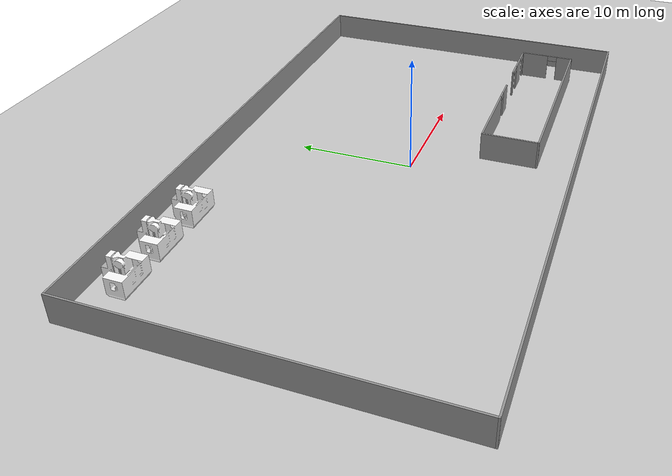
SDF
<sdf version="1.7">
 <world name="default">
  <light name="sun" type="directional">
   <pose>0 0 10 0 -0 0</pose>
   <diffuse>0.8 0.8 0.8 1</diffuse>
   <specular>0.2 0.2 0.2 1</specular>
   <attenuation>
    <range>1000</range>
    <constant>0.9</constant>
    <linear>0.01</linear>
    <quadratic>0.001</quadratic>
   </attenuation>
   <direction>-0.5 0.1 -0.9</direction>
   <spot><inner_angle>0</inner_angle><outer_angle>0</outer_angle><falloff>0</falloff></spot>
  </light>
  <model name="ground_plane">
   <static>1</static>
   <link name="link">
    <collision name="collision">
     <geometry><plane><normal>0 0 1</normal><size>100 100</size></plane></geometry>
     <surface>
      <contact><collide_bitmask>65535</collide_bitmask></contact>
      <friction><ode><mu>100</mu><mu2>50</mu2></ode></friction>
     </surface>
    </collision>
    <visual name="visual">
     <cast_shadows>0</cast_shadows>
     <geometry><plane><normal>0 0 1</normal><size>100 100</size></plane></geometry>
     <material>
      <script><uri>file://media/materials/scripts/gazebo.material</uri><name>Gazebo/Grey</name></script>
     </material>
    </visual>
   </link>
  </model>
  <gravity>0 0 -9.8</gravity>
  <magnetic_field>6e-06 2.3e-05 -4.2e-05</magnetic_field>
  <atmosphere type="adiabatic"/>
  <physics type="ode">
   <max_step_size>0.001</max_step_size>
   <real_time_factor>1</real_time_factor>
   <real_time_update_rate>1000</real_time_update_rate>
  </physics>
  <scene><ambient>0.4 0.4 0.4 1</ambient><background>0.7 0.7 0.7 1</background><shadows>1</shadows></scene>
  <spherical_coordinates>
   <surface_model>EARTH_WGS84</surface_model>
   <latitude_deg>0</latitude_deg>
   <longitude_deg>0</longitude_deg>
   <elevation>0</elevation>
   <heading_deg>0</heading_deg>
  </spherical_coordinates>
  <model name="factoryWall">
   <pose>-0.946757 1.42435 0 0 -0 0</pose>
   <link name="Wall_0">
    <collision name="Wall_0_Collision">
     <geometry><box><size>30.15 0.15 2.5</size></box></geometry>
     <pose>0 0 1.25 0 -0 0</pose>
    </collision>
    <visual name="Wall_0_Visual">
     <pose>0 0 1.25 0 -0 0</pose>
     <geometry><box><size>30.15 0.15 2.5</size></box></geometry>
     <material>
      <script><uri>file://media/materials/scripts/gazebo.material</uri><name>Gazebo/Grey</name></script>
      <ambient>1 1 1 1</ambient>
     </material>
     <meta><layer>0</layer></meta>
    </visual>
    <pose>25 0 0 0 -0 1.5708</pose>
   </link>
   <link name="Wall_2">
    <collision name="Wall_2_Collision">
     <geometry><box><size>30.15 0.15 2.5</size></box></geometry>
     <pose>0 0 1.25 0 -0 0</pose>
    </collision>
    <visual name="Wall_2_Visual">
     <pose>0 0 1.25 0 -0 0</pose>
     <geometry><box><size>30.15 0.15 2.5</size></box></geometry>
     <material>
      <script><uri>file://media/materials/scripts/gazebo.material</uri><name>Gazebo/Grey</name></script>
      <ambient>1 1 1 1</ambient>
     </material>
     <meta><layer>0</layer></meta>
    </visual>
    <pose>-25 0 0 0 -0 1.5708</pose>
   </link>
   <link name="Wall_4">
    <collision name="Wall_4_Collision">
     <geometry><box><size>50.15 0.15 2.5</size></box></geometry>
     <pose>0 0 1.25 0 -0 0</pose>
    </collision>
    <visual name="Wall_4_Visual">
     <pose>0 0 1.25 0 -0 0</pose>
     <geometry><box><size>50.15 0.15 2.5</size></box></geometry>
     <material>
      <script><uri>file://media/materials/scripts/gazebo.material</uri><name>Gazebo/Grey</name></script>
      <ambient>1 1 1 1</ambient>
     </material>
     <meta><layer>0</layer></meta>
    </visual>
    <pose>0 15 0 0 -0 0</pose>
   </link>
   <link name="Wall_6">
    <collision name="Wall_6_Collision">
     <geometry><box><size>50.15 0.15 2.5</size></box></geometry>
     <pose>0 0 1.25 0 -0 0</pose>
    </collision>
    <visual name="Wall_6_Visual">
     <pose>0 0 1.25 0 -0 0</pose>
     <geometry><box><size>50.15 0.15 2.5</size></box></geometry>
     <material>
      <script><uri>file://media/materials/scripts/gazebo.material</uri><name>Gazebo/Grey</name></script>
      <ambient>1 1 1 1</ambient>
     </material>
     <meta><layer>0</layer></meta>
    </visual>
    <pose>0 -15 0 0 -0 0</pose>
   </link>
   <static>1</static>
  </model>
  <model name="demoPlaceWallv3">
   <pose>12.1937 -7.7684 0 0 -0 0</pose>
   <link name="Wall_0">
    <collision name="Wall_0_Collision">
     <geometry><box><size>17.75 0.15 2.5</size></box></geometry>
     <pose>0 0 1.25 0 -0 0</pose>
    </collision>
    <visual name="Wall_0_Visual">
     <pose>0 0 1.25 0 -0 0</pose>
     <geometry><box><size>17.75 0.15 2.5</size></box></geometry>
     <material>
      <script><uri>file://media/materials/scripts/gazebo.material</uri><name>Gazebo/Grey</name></script>
      <ambient>1 1 1 1</ambient>
     </material>
     <meta><layer>0</layer></meta>
    </visual>
    <pose>0 -2.447 0 0 -0 0</pose>
   </link>
   <link name="Wall_2">
    <collision name="Wall_2_Collision">
     <geometry><box><size>5.044 0.15 2.5</size></box></geometry>
     <pose>0 0 1.25 0 -0 0</pose>
    </collision>
    <visual name="Wall_2_Visual">
     <pose>0 0 1.25 0 -0 0</pose>
     <geometry><box><size>5.044 0.15 2.5</size></box></geometry>
     <material>
      <script><uri>file://media/materials/scripts/gazebo.material</uri><name>Gazebo/Grey</name></script>
      <ambient>1 1 1 1</ambient>
     </material>
     <meta><layer>0</layer></meta>
    </visual>
    <pose>-8.8 0 0 0 -0 1.5708</pose>
   </link>
   <link name="Wall_4">
    <pose>0 2.447 0 0 -0 0</pose>
    <visual name="Wall_4_Visual_0">
     <pose>-5.222 0 1.25 0 -0 0</pose>
     <geometry><box><size>7.306 0.15 2.5</size></box></geometry>
     <material>
      <script><uri>file://media/materials/scripts/gazebo.material</uri><name>Gazebo/Grey</name></script>
      <ambient>1 1 1 1</ambient>
     </material>
     <meta><layer>0</layer></meta>
    </visual>
    <collision name="Wall_4_Collision_0">
     <geometry><box><size>7.306 0.15 2.5</size></box></geometry>
     <pose>-5.222 0 1.25 0 -0 0</pose>
    </collision>
    <visual name="Wall_4_Visual_1">
     <pose>0.136 0 1.25 0 -0 0</pose>
     <geometry><box><size>1.61 0.15 2.5</size></box></geometry>
     <material>
      <script><uri>file://media/materials/scripts/gazebo.material</uri><name>Gazebo/Grey</name></script>
      <ambient>1 1 1 1</ambient>
     </material>
     <meta><layer>0</layer></meta>
    </visual>
    <collision name="Wall_4_Collision_1">
     <geometry><box><size>1.61 0.15 2.5</size></box></geometry>
     <pose>0.136 0 1.25 0 -0 0</pose>
    </collision>
    <visual name="Wall_4_Visual_2">
     <pose>3.886 0 1.25 0 -0 0</pose>
     <geometry><box><size>0.289999 0.15 2.5</size></box></geometry>
     <material>
      <script><uri>file://media/materials/scripts/gazebo.material</uri><name>Gazebo/Grey</name></script>
      <ambient>1 1 1 1</ambient>
     </material>
     <meta><layer>0</layer></meta>
    </visual>
    <collision name="Wall_4_Collision_2">
     <geometry><box><size>0.289999 0.15 2.5</size></box></geometry>
     <pose>3.886 0 1.25 0 -0 0</pose>
    </collision>
    <visual name="Wall_4_Visual_3">
     <pose>6.281 0 1.25 0 -0 0</pose>
     <geometry><box><size>1.9 0.15 2.5</size></box></geometry>
     <material>
      <script><uri>file://media/materials/scripts/gazebo.material</uri><name>Gazebo/Grey</name></script>
      <ambient>1 1 1 1</ambient>
     </material>
     <meta><layer>0</layer></meta>
    </visual>
    <collision name="Wall_4_Collision_3">
     <geometry><box><size>1.9 0.15 2.5</size></box></geometry>
     <pose>6.281 0 1.25 0 -0 0</pose>
    </collision>
    <visual name="Wall_4_Visual_4">
     <pose>8.703 0 1.25 0 -0 0</pose>
     <geometry><box><size>0.343999 0.15 2.5</size></box></geometry>
     <material>
      <script><uri>file://media/materials/scripts/gazebo.material</uri><name>Gazebo/Grey</name></script>
      <ambient>1 1 1 1</ambient>
     </material>
     <meta><layer>0</layer></meta>
    </visual>
    <collision name="Wall_4_Collision_4">
     <geometry><box><size>0.343999 0.15 2.5</size></box></geometry>
     <pose>8.703 0 1.25 0 -0 0</pose>
    </collision>
    <visual name="Wall_4_Visual_5">
     <pose>-1.119 0 2.25 0 -0 0</pose>
     <geometry><box><size>0.9 0.15 0.5</size></box></geometry>
     <material>
      <script><uri>file://media/materials/scripts/gazebo.material</uri><name>Gazebo/Grey</name></script>
      <ambient>1 1 1 1</ambient>
     </material>
     <meta><layer>0</layer></meta>
    </visual>
    <collision name="Wall_4_Collision_5">
     <geometry><box><size>0.9 0.15 0.5</size></box></geometry>
     <pose>-1.119 0 2.25 0 -0 0</pose>
    </collision>
    <visual name="Wall_4_Visual_6">
     <pose>4.681 0 2.25 0 -0 0</pose>
     <geometry><box><size>1.3 0.15 0.5</size></box></geometry>
     <material>
      <script><uri>file://media/materials/scripts/gazebo.material</uri><name>Gazebo/Grey</name></script>
      <ambient>1 1 1 1</ambient>
     </material>
     <meta><layer>0</layer></meta>
    </visual>
    <collision name="Wall_4_Collision_6">
     <geometry><box><size>1.3 0.15 0.5</size></box></geometry>
     <pose>4.681 0 2.25 0 -0 0</pose>
    </collision>
    <visual name="Wall_4_Visual_7">
     <pose>7.881 0 2.25 0 -0 0</pose>
     <geometry><box><size>1.3 0.15 0.5</size></box></geometry>
     <material>
      <script><uri>file://media/materials/scripts/gazebo.material</uri><name>Gazebo/Grey</name></script>
      <ambient>1 1 1 1</ambient>
     </material>
     <meta><layer>0</layer></meta>
    </visual>
    <collision name="Wall_4_Collision_7">
     <geometry><box><size>1.3 0.15 0.5</size></box></geometry>
     <pose>7.881 0 2.25 0 -0 0</pose>
    </collision>
   </link>
   <link name="Wall_6">
    <pose>8.8 0 0 0 -0 -1.5708</pose>
    <visual name="Wall_6_Visual_0">
     <pose>-1.2095 0 1.25 0 -0 0</pose>
     <geometry><box><size>2.625 0.15 2.5</size></box></geometry>
     <material>
      <script><uri>file://media/materials/scripts/gazebo.material</uri><name>Gazebo/Grey</name></script>
      <ambient>1 1 1 1</ambient>
     </material>
     <meta><layer>0</layer></meta>
    </visual>
    <collision name="Wall_6_Collision_0">
     <geometry><box><size>2.625 0.15 2.5</size></box></geometry>
     <pose>-1.2095 0 1.25 0 -0 0</pose>
    </collision>
    <visual name="Wall_6_Visual_1">
     <pose>1.7625 0 1.25 0 -0 0</pose>
     <geometry><box><size>1.519 0.15 2.5</size></box></geometry>
     <material>
      <script><uri>file://media/materials/scripts/gazebo.material</uri><name>Gazebo/Grey</name></script>
      <ambient>1 1 1 1</ambient>
     </material>
     <meta><layer>0</layer></meta>
    </visual>
    <collision name="Wall_6_Collision_1">
     <geometry><box><size>1.519 0.15 2.5</size></box></geometry>
     <pose>1.7625 0 1.25 0 -0 0</pose>
    </collision>
    <visual name="Wall_6_Visual_2">
     <pose>0.553 0 2.25 0 -0 0</pose>
     <geometry><box><size>0.9 0.15 0.5</size></box></geometry>
     <material>
      <script><uri>file://media/materials/scripts/gazebo.material</uri><name>Gazebo/Grey</name></script>
      <ambient>1 1 1 1</ambient>
     </material>
     <meta><layer>0</layer></meta>
    </visual>
    <collision name="Wall_6_Collision_2">
     <geometry><box><size>0.9 0.15 0.5</size></box></geometry>
     <pose>0.553 0 2.25 0 -0 0</pose>
    </collision>
   </link>
   <static>1</static>
  </model>
  <model name="millingCNC">
   <link name="link_0">
    <inertial>
     <mass>1</mass>
     <inertia>
      <ixx>0.166667</ixx>
      <ixy>0</ixy>
      <ixz>0</ixz>
      <iyy>0.166667</iyy>
      <iyz>0</iyz>
      <izz>0.166667</izz>
     </inertia>
    </inertial>
    <visual name="visual">
     <geometry>
      <mesh><uri>model://millingCNC/model/MILLING-CNC.stl</uri><scale>0.001 0.0011 0.001</scale></mesh>
     </geometry>
     <material>
      <lighting>1</lighting>
      <ambient>1 1 1 1</ambient>
      <diffuse>1 1 1 1</diffuse>
      <specular>1 1 1 0</specular>
      <emissive>0 0 0 1</emissive>
     </material>
    </visual>
    <collision name="collision">
     <geometry>
      <mesh><uri>model://millingCNC/model/MILLING-CNC.stl</uri><scale>0.001 0.001 0.001</scale></mesh>
     </geometry>
     <surface>
      <friction>
       <ode><mu>1</mu><mu2>1</mu2><fdir1>0 0 0</fdir1><slip1>0</slip1><slip2>0</slip2></ode>
       <torsional>
        <coefficient>1</coefficient>
        <patch_radius>0</patch_radius>
        <surface_radius>0</surface_radius>
        <use_patch_radius>1</use_patch_radius>
        <ode><slip>0</slip></ode>
       </torsional>
      </friction>
      <bounce><restitution_coefficient>0</restitution_coefficient><threshold>1e+06</threshold></bounce>
      <contact>
       <collide_without_contact>0</collide_without_contact>
       <collide_without_contact_bitmask>1</collide_without_contact_bitmask>
       <collide_bitmask>1</collide_bitmask>
       <ode>
        <soft_cfm>0</soft_cfm>
        <soft_erp>0.2</soft_erp>
        <kp>1e+13</kp>
        <kd>1</kd>
        <max_vel>0.01</max_vel>
        <min_depth>0</min_depth>
       </ode>
       <bullet>
        <split_impulse>1</split_impulse>
        <split_impulse_penetration_threshold>-0.01</split_impulse_penetration_threshold>
        <soft_cfm>0</soft_cfm>
        <soft_erp>0.2</soft_erp>
        <kp>1e+13</kp>
        <kd>1</kd>
       </bullet>
      </contact>
     </surface>
    </collision>
   </link>
   <static>1</static>
   <pose>-21.0606 13.7129 0 0 -0 0</pose>
  </model>
  <model name="millingCNC_0">
   <link name="link_0">
    <inertial>
     <mass>1</mass>
     <inertia>
      <ixx>0.166667</ixx>
      <ixy>0</ixy>
      <ixz>0</ixz>
      <iyy>0.166667</iyy>
      <iyz>0</iyz>
      <izz>0.166667</izz>
     </inertia>
    </inertial>
    <visual name="visual">
     <geometry>
      <mesh><uri>model://millingCNC/model/MILLING-CNC.stl</uri><scale>0.001 0.0011 0.001</scale></mesh>
     </geometry>
     <material>
      <lighting>1</lighting>
      <ambient>1 1 1 1</ambient>
      <diffuse>1 1 1 1</diffuse>
      <specular>1 1 1 0</specular>
      <emissive>0 0 0 1</emissive>
     </material>
    </visual>
    <collision name="collision">
     <geometry>
      <mesh><uri>model://millingCNC/model/MILLING-CNC.stl</uri><scale>0.001 0.001 0.001</scale></mesh>
     </geometry>
     <surface>
      <friction>
       <ode><mu>1</mu><mu2>1</mu2><fdir1>0 0 0</fdir1><slip1>0</slip1><slip2>0</slip2></ode>
       <torsional>
        <coefficient>1</coefficient>
        <patch_radius>0</patch_radius>
        <surface_radius>0</surface_radius>
        <use_patch_radius>1</use_patch_radius>
        <ode><slip>0</slip></ode>
       </torsional>
      </friction>
      <bounce><restitution_coefficient>0</restitution_coefficient><threshold>1e+06</threshold></bounce>
      <contact>
       <collide_without_contact>0</collide_without_contact>
       <collide_without_contact_bitmask>1</collide_without_contact_bitmask>
       <collide_bitmask>1</collide_bitmask>
       <ode>
        <soft_cfm>0</soft_cfm>
        <soft_erp>0.2</soft_erp>
        <kp>1e+13</kp>
        <kd>1</kd>
        <max_vel>0.01</max_vel>
        <min_depth>0</min_depth>
       </ode>
       <bullet>
        <split_impulse>1</split_impulse>
        <split_impulse_penetration_threshold>-0.01</split_impulse_penetration_threshold>
        <soft_cfm>0</soft_cfm>
        <soft_erp>0.2</soft_erp>
        <kp>1e+13</kp>
        <kd>1</kd>
       </bullet>
      </contact>
     </surface>
    </collision>
   </link>
   <static>1</static>
   <pose>-16.7482 13.7724 0 0 -0 0</pose>
  </model>
  <model name="millingCNC_1">
   <link name="link_0">
    <inertial>
     <mass>1</mass>
     <inertia>
      <ixx>0.166667</ixx>
      <ixy>0</ixy>
      <ixz>0</ixz>
      <iyy>0.166667</iyy>
      <iyz>0</iyz>
      <izz>0.166667</izz>
     </inertia>
    </inertial>
    <visual name="visual">
     <geometry>
      <mesh><uri>model://millingCNC/model/MILLING-CNC.stl</uri><scale>0.001 0.0011 0.001</scale></mesh>
     </geometry>
     <material>
      <lighting>1</lighting>
      <ambient>1 1 1 1</ambient>
      <diffuse>1 1 1 1</diffuse>
      <specular>1 1 1 0</specular>
      <emissive>0 0 0 1</emissive>
     </material>
    </visual>
    <collision name="collision">
     <geometry>
      <mesh><uri>model://millingCNC/model/MILLING-CNC.stl</uri><scale>0.001 0.001 0.001</scale></mesh>
     </geometry>
     <surface>
      <friction>
       <ode><mu>1</mu><mu2>1</mu2><fdir1>0 0 0</fdir1><slip1>0</slip1><slip2>0</slip2></ode>
       <torsional>
        <coefficient>1</coefficient>
        <patch_radius>0</patch_radius>
        <surface_radius>0</surface_radius>
        <use_patch_radius>1</use_patch_radius>
        <ode><slip>0</slip></ode>
       </torsional>
      </friction>
      <bounce><restitution_coefficient>0</restitution_coefficient><threshold>1e+06</threshold></bounce>
      <contact>
       <collide_without_contact>0</collide_without_contact>
       <collide_without_contact_bitmask>1</collide_without_contact_bitmask>
       <collide_bitmask>1</collide_bitmask>
       <ode>
        <soft_cfm>0</soft_cfm>
        <soft_erp>0.2</soft_erp>
        <kp>1e+13</kp>
        <kd>1</kd>
        <max_vel>0.01</max_vel>
        <min_depth>0</min_depth>
       </ode>
       <bullet>
        <split_impulse>1</split_impulse>
        <split_impulse_penetration_threshold>-0.01</split_impulse_penetration_threshold>
        <soft_cfm>0</soft_cfm>
        <soft_erp>0.2</soft_erp>
        <kp>1e+13</kp>
        <kd>1</kd>
       </bullet>
      </contact>
     </surface>
    </collision>
   </link>
   <static>1</static>
   <pose>-12.3675 13.6421 0 0 -0 0</pose>
  </model>
 </world>
</sdf>
